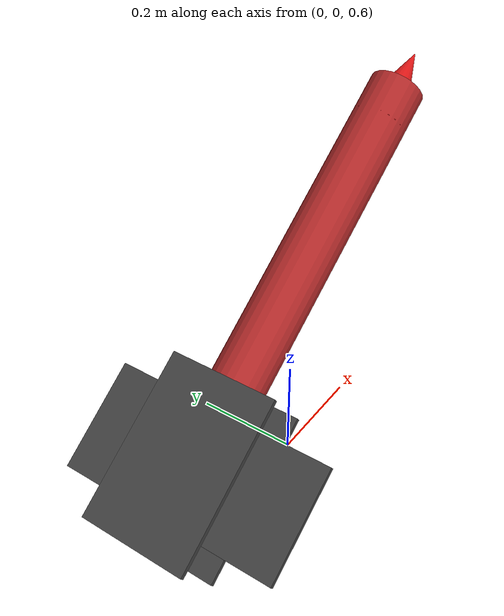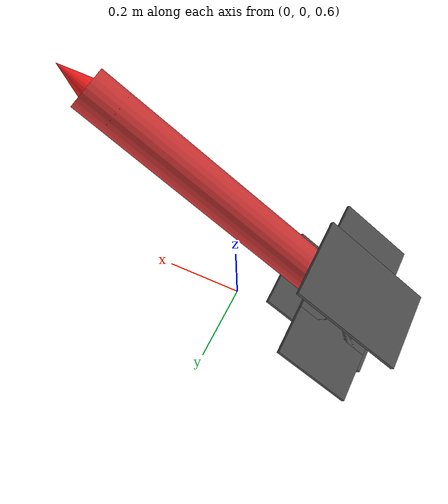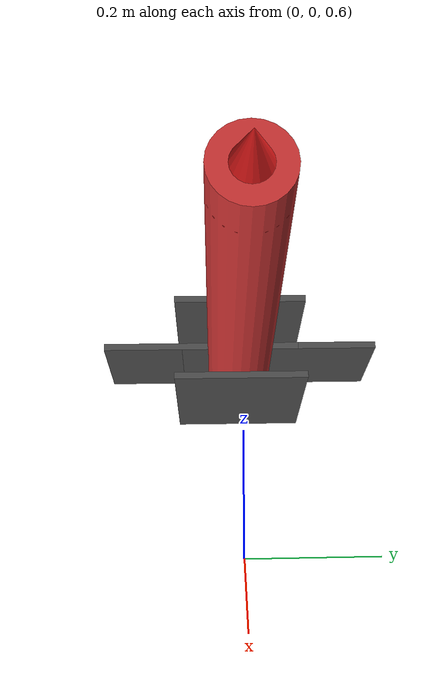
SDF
<?xml version="1.0" encoding="UTF-8"?>
<sdf version='1.9'>
  <model name='rocket'>
    <include merge='true'>
      <uri>model://rocket_base</uri>
    </include>
    <plugin filename="libBallisticThrusterModelPlugin.so"
      name="gz::sim::systems::BallisticThrusterModel">
      <linkName>base_link</linkName>
      <topic>model/rocket/thrust_command</topic>
      <maxThrust>2000.0</maxThrust>
      <!-- Thrust direction along rocket axis (will be rotated by initial pose) -->
      <!-- Rocket starts at 55 degrees, so thrust will be at 55 degrees in world frame -->
      <thrustDirection>0 0 1</thrustDirection>
      <impulseMode>true</impulseMode>
      <maxThrustDuration>15.0</maxThrustDuration>
      <enableRangeCalculation>true</enableRangeCalculation>
      <enableVelocityCalculation>true</enableVelocityCalculation>
      <rangeTopic>model/rocket/range</rangeTopic>
      <velocityTopic>model/rocket/velocity</velocityTopic>
    </plugin>
    <!-- Aerodynamic drag for stability - helps rocket fall nose-first -->
    <!-- Drag applied at center of pressure (near fins) to create stabilizing moment -->
    <plugin filename="gz-sim-lift-drag-system" name="gz::sim::systems::LiftDrag">
      <a0>0</a0>
      <cla>0</cla>
      <cda>0.3</cda>
      <cma>0</cma>
      <alpha_stall>0</alpha_stall>
      <cla_stall>0</cla_stall>
      <cda_stall>0</cda_stall>
      <cma_stall>0</cma_stall>
      <cp>0 0 -0.25</cp>
      <area>0.0157</area>
      <air_density>1.2041</air_density>
      <forward>0 0 1</forward>
      <upward>0 1 0</upward>
      <link_name>base_link</link_name>
    </plugin>
  </model>
</sdf>

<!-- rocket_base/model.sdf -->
<sdf version='1.9'>
  <model name='rocket_base'>
    <!-- Start at 55 degrees angle for ballistic trajectory -->
    <!-- 55 degrees = 0.9599 radians rotation around Y axis -->
    <!-- Raised higher to prevent immediate ground contact -->
    <pose>0 0 1.0 0 0.9599 0</pose>
    <self_collide>false</self_collide>
    <static>false</static>
    <link name="base_link">
      <inertial>
        <mass>30.0</mass>
        <!-- Center of mass shifted MUCH forward (towards nose) for stability -->
        <!-- Heavy nose ensures the rocket falls nose-first -->
        <!-- Moved very far forward (0.35m) to make nose much heavier -->
        <pose>0 0 0.35 0 0 0</pose>
        <inertia>
          <!-- Increased inertia for longer rocket with heavy nose -->
          <ixx>0.04</ixx>
          <ixy>0</ixy>
          <ixz>0</ixz>
          <iyy>0.04</iyy>
          <iyz>0</iyz>
          <izz>0.06</izz>
        </inertia>
      </inertial>
      <gravity>true</gravity>
      <!-- Removed velocity_decay to allow natural ballistic motion -->
      <visual name="rocket_body_visual">
        <pose>0 0 0 0 0 0</pose>
        <geometry>
          <cylinder>
            <radius>0.05</radius>
            <length>0.8</length>
          </cylinder>
        </geometry>
        <material>
          <ambient>0.8 0.2 0.2 1</ambient>
          <diffuse>0.8 0.2 0.2 1</diffuse>
          <specular>0.5 0.5 0.5 1</specular>
        </material>
      </visual>
      <visual name="rocket_nose_visual">
        <pose>0 0 0.4 0 0 0</pose>
        <geometry>
          <cone>
            <radius>0.05</radius>
            <length>0.15</length>
          </cone>
        </geometry>
        <material>
          <ambient>0.9 0.1 0.1 1</ambient>
          <diffuse>0.9 0.1 0.1 1</diffuse>
          <specular>0.5 0.5 0.5 1</specular>
        </material>
      </visual>
      <visual name="rocket_fins_visual_1">
        <pose>0.06 0 -0.35 0 0 0</pose>
        <geometry>
          <box>
            <size>0.01 0.2 0.3</size>
          </box>
        </geometry>
        <material>
          <ambient>0.3 0.3 0.3 1</ambient>
          <diffuse>0.3 0.3 0.3 1</diffuse>
        </material>
      </visual>
      <visual name="rocket_fins_visual_2">
        <pose>-0.06 0 -0.35 0 0 0</pose>
        <geometry>
          <box>
            <size>0.01 0.2 0.3</size>
          </box>
        </geometry>
        <material>
          <ambient>0.3 0.3 0.3 1</ambient>
          <diffuse>0.3 0.3 0.3 1</diffuse>
        </material>
      </visual>
      <visual name="rocket_fins_visual_3">
        <pose>0 0.06 -0.35 1.5708 0 0</pose>
        <geometry>
          <box>
            <size>0.01 0.2 0.3</size>
          </box>
        </geometry>
        <material>
          <ambient>0.3 0.3 0.3 1</ambient>
          <diffuse>0.3 0.3 0.3 1</diffuse>
        </material>
      </visual>
      <visual name="rocket_fins_visual_4">
        <pose>0 -0.06 -0.35 1.5708 0 0</pose>
        <geometry>
          <box>
            <size>0.01 0.2 0.3</size>
          </box>
        </geometry>
        <material>
          <ambient>0.3 0.3 0.3 1</ambient>
          <diffuse>0.3 0.3 0.3 1</diffuse>
        </material>
      </visual>
      <collision name="rocket_body_collision">
        <pose>0 0 0 0 0 0</pose>
        <geometry>
          <cylinder>
            <radius>0.05</radius>
            <length>0.8</length>
          </cylinder>
        </geometry>
        <surface>
          <contact>
            <ode>
              <min_depth>0.001</min_depth>
              <max_vel>0</max_vel>
            </ode>
          </contact>
          <friction>
            <ode>
              <mu>0.5</mu>
              <mu2>0.5</mu2>
            </ode>
          </friction>
        </surface>
      </collision>
      <collision name="rocket_nose_collision">
        <pose>0 0 0.4 0 0 0</pose>
        <geometry>
          <cone>
            <radius>0.05</radius>
            <length>0.15</length>
          </cone>
        </geometry>
        <surface>
          <contact>
            <ode>
              <min_depth>0.001</min_depth>
              <max_vel>0</max_vel>
            </ode>
          </contact>
          <friction>
            <ode>
              <mu>0.5</mu>
              <mu2>0.5</mu2>
            </ode>
          </friction>
        </surface>
      </collision>
      <sensor name="imu_sensor" type="imu">
        <gz_frame_id>base_link</gz_frame_id>
        <always_on>1</always_on>
        <update_rate>250</update_rate>
        <imu>
          <angular_velocity>
            <x>
              <noise type="gaussian">
                <mean>0.0</mean>
                <stddev>0.0008726646</stddev>
              </noise>
            </x>
            <y>
              <noise type="gaussian">
                <mean>0.0</mean>
                <stddev>0.0008726646</stddev>
              </noise>
            </y>
            <z>
              <noise type="gaussian">
                <mean>0.0</mean>
                <stddev>0.0008726646</stddev>
              </noise>
            </z>
          </angular_velocity>
          <linear_acceleration>
            <x>
              <noise type="gaussian">
                <mean>0.0</mean>
                <stddev>0.00637</stddev>
              </noise>
            </x>
            <y>
              <noise type="gaussian">
                <mean>0.0</mean>
                <stddev>0.00637</stddev>
              </noise>
            </y>
            <z>
              <noise type="gaussian">
                <mean>0.0</mean>
                <stddev>0.00686</stddev>
              </noise>
            </z>
          </linear_acceleration>
        </imu>
      </sensor>
      <sensor name="navsat_sensor" type="navsat">
        <gz_frame_id>base_link</gz_frame_id>
        <always_on>1</always_on>
        <update_rate>30</update_rate>
      </sensor>
    </link>
  </model>
</sdf>
